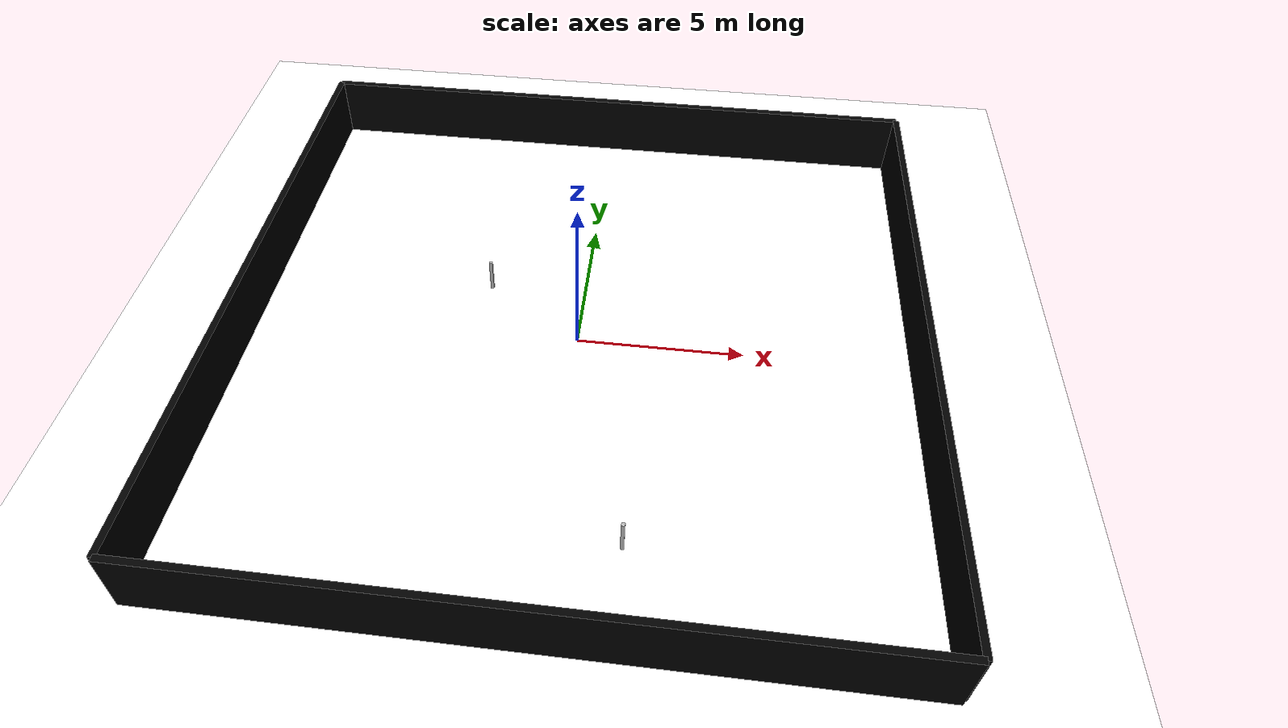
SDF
<?xml version="1.0" ?>
<sdf version="1.7">
  <world name="default">
    <plugin filename="gz-sim-physics-system" name="gz::sim::systems::Physics"></plugin>
    <plugin filename="gz-sim-sensors-system" name="gz::sim::systems::Sensors">
      <render_engine>ogre2</render_engine>
    </plugin>
    <plugin filename="gz-sim-user-commands-system" name="gz::sim::systems::UserCommands"></plugin>
    <plugin filename="gz-sim-scene-broadcaster-system" name="gz::sim::systems::SceneBroadcaster"></plugin>

    <scene>
      <background>1 1 1 1</background>
      <ambient>1 1 1 1</ambient>
      <grid>true</grid>
    </scene>

    <light type="directional" name="sun">
      <cast_shadows>true</cast_shadows>
      <pose>0 0 10 0 0 0</pose>
      <diffuse>0.8 0.8 0.8 1</diffuse>
      <specular>0.2 0.2 0.2 1</specular>
      <direction>-0.5 0.1 -0.9</direction>
    </light>

    <model name="ground_plane">
      <static>true</static>
      <link name="link">
        <collision name="collision">
          <geometry><plane><normal>0 0 1</normal><size>200 200</size></plane></geometry>
        </collision>
        <visual name="visual">
          <geometry><plane><normal>0 0 1</normal><size>200 200</size></plane></geometry>
          <material><ambient>1 1 1 1</ambient><diffuse>1 1 1 1</diffuse></material>
        </visual>
      </link>
    </model>

    <model name="arena_walls">
      <static>true</static>
      <link name="left_wall">
        <visual name="v"><geometry><box><size>0.2 20 2</size></box></geometry><material><ambient>0 0 0 1</ambient><diffuse>0 0 0 1</diffuse></material></visual>
        <collision name="c"><geometry><box><size>0.2 20 2</size></box></geometry></collision>
        <pose>-10 0 1 0 0 0</pose>
      </link>
      <link name="right_wall">
        <visual name="v"><geometry><box><size>0.2 20 2</size></box></geometry><material><ambient>0 0 0 1</ambient><diffuse>0 0 0 1</diffuse></material></visual>
        <collision name="c"><geometry><box><size>0.2 20 2</size></box></geometry></collision>
        <pose>10 0 1 0 0 0</pose>
      </link>
      <link name="back_wall">
        <visual name="v"><geometry><box><size>20 0.2 2</size></box></geometry><material><ambient>0 0 0 1</ambient><diffuse>0 0 0 1</diffuse></material></visual>
        <collision name="c"><geometry><box><size>20 0.2 2</size></box></geometry></collision>
        <pose>0 -10 1 0 0 0</pose>
      </link>
      <link name="front_wall">
        <visual name="v"><geometry><box><size>20 0.2 2</size></box></geometry><material><ambient>0 0 0 1</ambient><diffuse>0 0 0 1</diffuse></material></visual>
        <collision name="c"><geometry><box><size>20 0.2 2</size></box></geometry></collision>
        <pose>0 10 1 0 0 0</pose>
      </link>
    </model>
    <model name="waste_1">
      <static>true</static>
      <pose>2 -7 0.05 0 0 0</pose>
      <link name="link">
        <collision name="collision">
          <geometry>
            <box>
              <size>0.1 0.1 2.0</size>
            </box>
          </geometry>
        </collision>
        <visual name="visual">
          <geometry>
            <box>
              <size>0.1 0.1 2.0</size>
            </box>
          </geometry>
          <material>
  <pbr>
    <metal>
      <base_color>0 1 0 1</base_color>
      <metalness>0.0</metalness>
      <roughness>0.8</roughness>
    </metal>
  </pbr>
</material>

        </visual>
      </link>
    </model>

    <model name="waste_2">
      <static>true</static>
      <pose>-3 2 0.05 0 0 0</pose>
      <link name="link">
        <collision name="collision">
          <geometry>
            <box>
              <size>0.1 0.1 2.0</size>
            </box>
          </geometry>
        </collision>
        <visual name="visual">
          <geometry>
            <box>
              <size>0.1 0.1 2.0</size>
            </box>
          </geometry>
          <material>
  <pbr>
    <metal>
      <base_color>0 1 0 1</base_color>
      <metalness>0.0</metalness>
      <roughness>0.8</roughness>
    </metal>
  </pbr>
</material>

        </visual>
      </link>
    </model>

    <!-- =============== END WASTE OBJECTS =============== -->

  </world>
</sdf>
